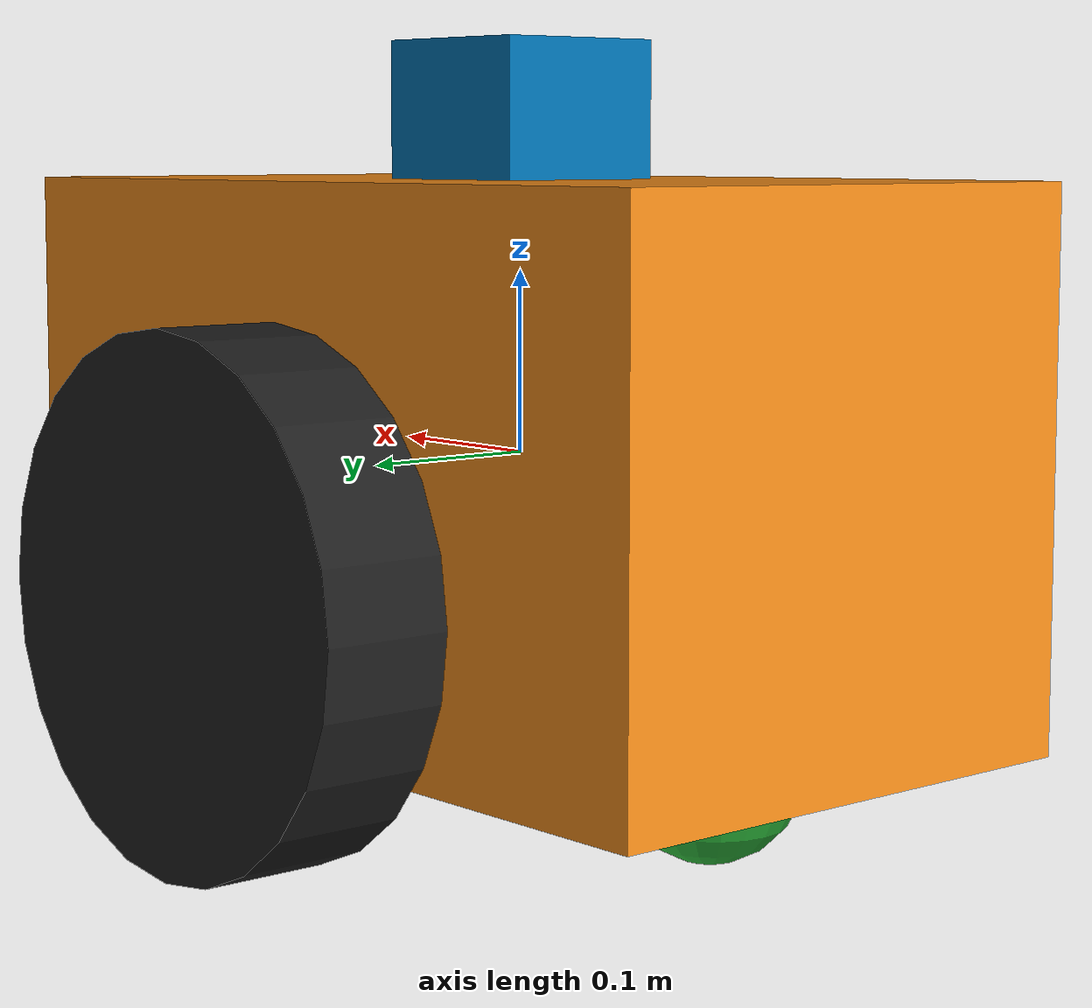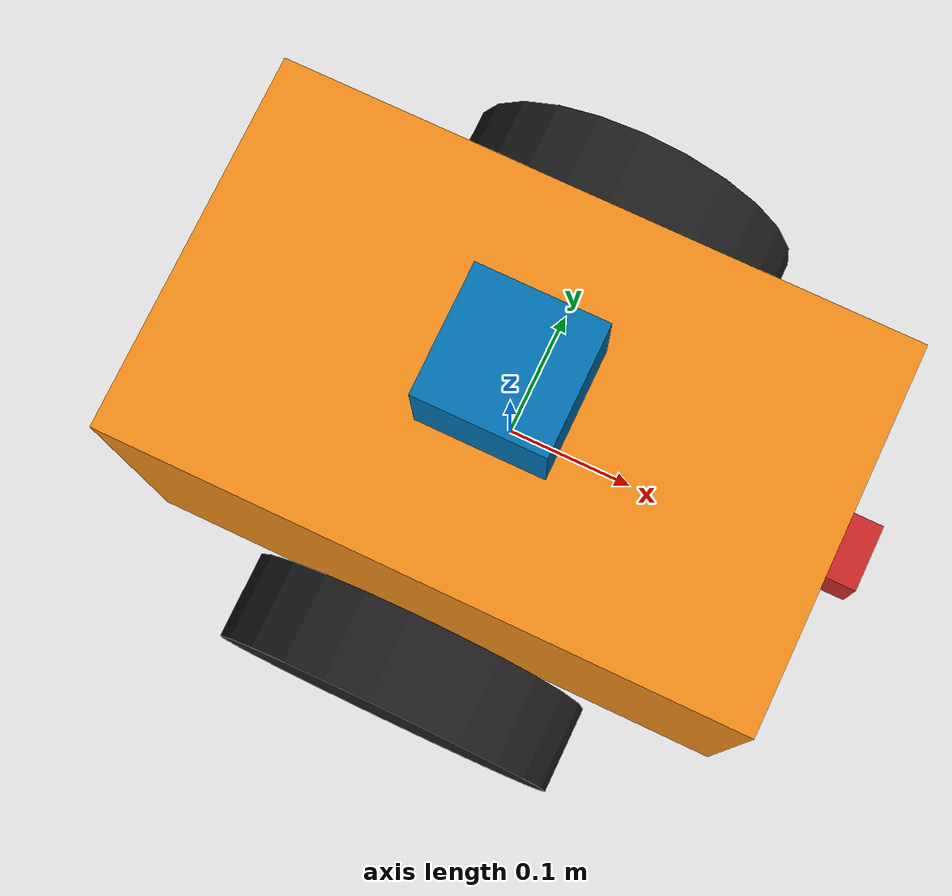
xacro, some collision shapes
<?xml version='1.0'?>

<robot name="DD" xmlns:xacro = "http://www.ros.org/wiki/xacro">

    <xacro:include filename="$(find dd_sim)/model/dd.gazebo" /> <!--เรียก file dd.gazeobo plug-in ต่างๆของ robot ก็จะอยู่ในนี้-->
    <xacro:include filename="$(find dd_sim)/model/materials.xacro" /> <!--เรียก file material.xacro-->
    <xacro:property name="height3" value="0.2" /> <!--ประกาศตัวแปร height3 ผ่าน xacro:property ประกาศตรงนี้ที่เดียวไม่ต้องใส่ค่าใหม่หลายรอบ-->
    <xacro:property name="axel_offset" value="0.05" /> <!-- ประกาศตัวแปร axel_offset ผ่าน xacro:property -->
    <xacro:property name="camera_link" value="0.05" /> <!-- ประกาศตัวแปร camera_link ผ่าน xacro:property-->

    <!--ต่อไปเป็นการสร้าง robot ผ่านทางการบอก link&joint เริ่มจาก DDbase ต่อกับ left right_wheel และ ต่อกับ camera hokuyolink sensor -->
    <!--การบอกการเชื่อมต่อก็จะอิงแต่ละ frame ของ link ว่าแต่ละ link ไปอีก link ต่อ transfrom x y z roll pitch yaw เท่าไหร่-->
    <!--การบอกคุณสมบัติของแต่ละ link เช่น Inertia weight collision จุดอ้างอิง(origin) visual(ให้แสดงออกมาในรูปแบบไหน อาจจะ import มาได้) friction เป็นต้น-->
    <!--การบอกประเภท joint เป็น continuous เคลื่อนที่ หรือแบบ fixed บอก parent กับ child ที่เชื่อม  dampling  limit friction-->

    <link name="DDbase">
        <pose>0 0 0.1 0 0 0</pose>

        <inertial>
        <mass value="8.0"/>
        <origin xyz="0.0 0 0" rpy=" 0 0 0"/>
        <inertia
            ixx="1" ixy="0" ixz="0"
            iyy="1.0" iyz="0"
            izz="1"
        />
        </inertial>

        <collision name='collision'>
        <geometry>
            <box size=".5 .3 .3"/>
        </geometry>
        </collision>

        <visual name='DDbase_visual'>
            <origin xyz="0 0 0" rpy=" 0 0 0"/>
            <geometry>
                <box size=".5 .3 .3"/>
            </geometry>
            <material name="orange"/>
        </visual>

        <collision name='support'>
        <origin xyz="-0.15 0 -0.15" rpy=" 0 0 0"/>
        <geometry>
            <sphere radius="0.05"/>
        </geometry>
        <surface>
            <friction>
            <ode>
                <mu>0</mu>
                <mu2>0</mu2>
                <slip1>1.0</slip1>
                <slip2>1.0</slip2>
            </ode>
            </friction>
        </surface>
        </collision>

        <visual name='support_visual'>
        <origin xyz="-0.15 0 -0.15" rpy=" 0 0 0"/>
        <geometry>
            <sphere radius="0.05"/>
        </geometry>
        <material name="green"/>
        </visual>

        <collision name='support2'>
        <origin xyz="0.15 0 -0.15" rpy=" 0 0 0"/>
        <geometry>
            <sphere radius="0.05"/>
        </geometry>
        <surface>
            <friction>
            <ode>
                <mu>0</mu>
                <mu2>0</mu2>
                <slip1>1.0</slip1>
                <slip2>1.0</slip2>
            </ode>
            </friction>
        </surface>
        </collision>

        <visual name='support2_visual'>
        <origin xyz="0.15 0 -0.15" rpy=" 0 0 0"/>
        <geometry>
            <sphere radius="0.05"/>
        </geometry>
        <material name="green"/>
        </visual>
    </link>

    <link name="left_wheel">
        <!--origin xyz="0.1 0.13 0.1" rpy="0 1.5707 1.5707"/-->
        <collision name="collision">
        <origin xyz="0 0 0" rpy="0 1.5707 1.5707"/>
        <geometry>
            <cylinder radius="0.14" length="0.07"/>
        </geometry>
        </collision>
        <visual name="left_wheel_visual">
        <origin xyz="0 0 0" rpy="0 1.5707 1.5707"/>
        <geometry>
            <cylinder radius="0.14" length="0.07"/>
        </geometry>
        <material name="black"/>
        </visual>
        <inertial>
        <origin xyz="0 0 0" rpy="0 1.5707 1.5707"/>
        <mass value="5"/>
        <cylinder_inertia m="5" r="0.14" h="0.07"/>
        <inertia
            ixx="1.0" ixy="0.0" ixz="0.0"
            iyy="1.0" iyz="0.0"
            izz="1.0"/>
        </inertial>
    </link>

    <link name="right_wheel">
        <!--origin xyz="0.1 -0.13 0.1" rpy="0 1.5707 1.5707"/-->
        <collision name="collision">
        <origin xyz="0 0 0" rpy="0 1.5707 1.5707"/>
        <geometry>
            <cylinder radius="0.14" length="0.07"/>
        </geometry>
        </collision>
        <visual name="right_wheel_visual">
        <origin xyz="0 0 0" rpy="0 1.5707 1.5707"/>
        <geometry>
            <cylinder radius="0.14" length="0.07"/>
        </geometry>
        <material name="black"/>
        </visual>
        <inertial>
        <origin xyz="0 0 0" rpy="0 1.5707 1.5707"/>
        <mass value="5"/>
        <cylinder_inertia m="5" r="0.14" h="0.07"/>
        <inertia
            ixx="1.0" ixy="0.0" ixz="0.0"
            iyy="1.0" iyz="0.0"
            izz="1.0"/>
        </inertial>
    </link>

    <joint type="continuous" name="left_wheel_hinge">
        <origin xyz="0 0.2 -0.061" rpy="0 0 0"/>
        <child link="left_wheel"/>
        <parent link="DDbase"/>
        <axis xyz="0 1 0" rpy="0 0 0"/>
        <limit effort="100" velocity="100"/>
        <joint_properties damping="0.0" friction="0.0"/>
    </joint>

    <joint type="continuous" name="right_wheel_hinge">
        <origin xyz="0 -0.2 -0.061" rpy="0 0 0"/>
        <child link="right_wheel"/>
        <parent link="DDbase"/>
        <axis xyz="0 1 0" rpy="0 0 0"/>
        <limit effort="100" velocity="100"/>
        <joint_properties damping="0.0" friction="0.0"/>
    </joint>

      <!-- Camera -->
  <link name="camera_link">
    <collision>
      <origin xyz="0 0 0" rpy="0 0 0"/>
      <geometry>
  	<box size="${camera_link} ${camera_link} ${camera_link}"/>
      </geometry>
    </collision>

    <visual>
      <origin xyz="0 0 0" rpy="0 0 0"/>
      <geometry>
	  <box size="${camera_link} ${camera_link} ${camera_link}"/>
      </geometry>
      <material name="red"/>
    </visual>

    <inertial>
      <mass value="1e-5" />
      <origin xyz="0 0 0" rpy="0 0 0"/>
      <inertia ixx="1e-6" ixy="0" ixz="0" iyy="1e-6" iyz="0" izz="1e-6" />
    </inertial>
  </link>
  <joint name="camera_joint" type="fixed">
    <axis xyz="0 1 0" />
    <origin xyz="0.25 0 ${height3 - axel_offset*2}" rpy="0 0 0"/>
    <parent link="DDbase"/>
    <child link="camera_link"/>
  </joint>

  <!-- Hokuyo Laser -->
  <link name="hokuyo_link">
    <collision>
      <origin xyz="0 0 0" rpy="0 0 0"/>
      <geometry>
      	<box size="0.1 0.1 0.1"/>
      </geometry>
    </collision>

    <visual>
      <origin xyz="0 0 0" rpy="0 0 0"/>
      <geometry>
        <mesh filename="package://dd_sim/meshe/hokuyo.dae"/>
      </geometry>
    </visual>

    <inertial>
      <mass value="1e-5" />
      <origin xyz="0 0 0" rpy="0 0 0"/>
      <inertia ixx="1e-6" ixy="0" ixz="0" iyy="1e-6" iyz="0" izz="1e-6" />
    </inertial>
  </link>

  <joint name="hokuyo_joint" type="fixed">
    <axis xyz="0 1 0" />
    <origin xyz="0 0 ${height3 - axel_offset/2}" rpy="0 0 0"/>
    <parent link="DDbase"/>
    <child link="hokuyo_link"/>
  </joint>
</robot>
